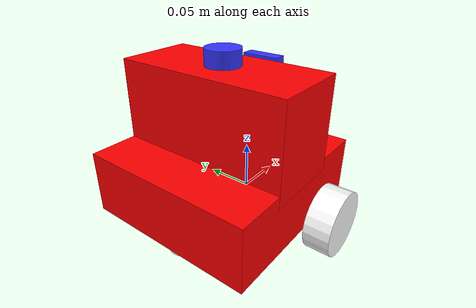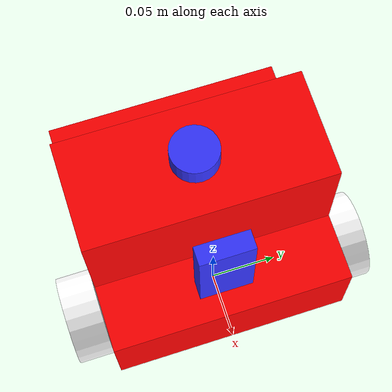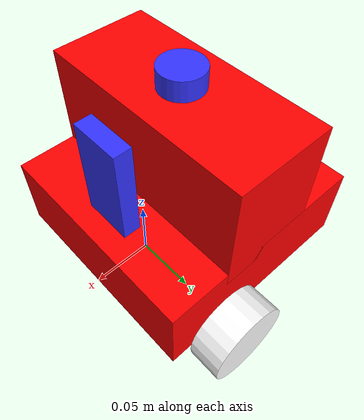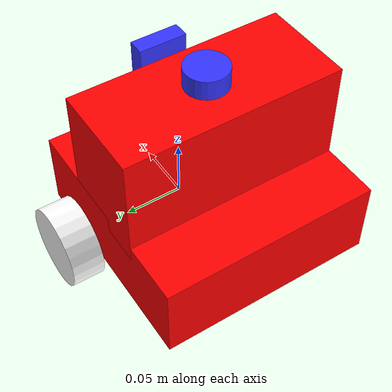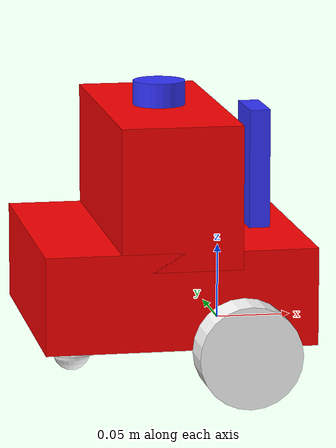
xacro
<?xml version="1.0"?>

<robot xmlns:xacro="http://www.ros.org/wiki/xacro" name="diff_robot">

    <xacro:arg name="use_ros2_control" default="true"/>
    <xacro:arg name="sim_mode" default="false"/>

    <xacro:include filename="core.robot.xacro"/>

    <xacro:if value="$(arg use_ros2_control)">
        <xacro:include filename="ros2_control.xacro"/>
    </xacro:if>
    <xacro:unless value="$(arg use_ros2_control)">
        <xacro:include filename="gazebo_control.xacro"/>
    </xacro:unless>

</robot>

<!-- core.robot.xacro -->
<robot xmlns:xacro="http://www.ros.org/wiki/xacro" name="diff_robot">

    <xacro:include filename="inertial_macros.xacro"/>

    <material name="white">
        <color rgba="1 1 1 1"/>
    </material>

    <material name="orange">
        <color rgba="1 0.3 0.1 1"/>
    </material>

    <material name="blue">
        <color rgba="0.2 0.2 1 1"/>
    </material>

    <material name="black">
        <color rgba="0 0 0 1"/>
    </material>

    <material name="red">
        <color rgba="1 0 0 1"/>
    </material>

    <!-- BASE LINK -->
    <link name="base_link"></link>

    <!-- BASE FOOTPRINT JOINT -->
    <joint name="base_footprint_joint" type="fixed">
        <parent link="base_link"/>
        <child link="base_footprint"/>
        <origin xyz="0 0 0" rpy="0 0 0"/>
    </joint>

     <!-- BASE FOOTPRINT LINK -->
     <link name="base_footprint"></link>

    <!-- CHASSIS JOINT -->
    <joint name="chassis_joint" type="fixed">
        <parent link="base_link"/>
        <child link="chassis_link"/>
        <origin xyz="-0.04 0 0"/> <!-- 18/2 = 9 and -5 = 4cm because of dc motor distance and convert to cm to m = 0.04 -->
    </joint>

    <!-- CHASSIS LINK -->
    <link name="chassis_link">
    <visual>
        <origin xyz="0.0 0.0 0.0325" rpy="0.0 0.0 0.0"/>
        <geometry>
            <box size="0.18 0.18 0.065"/>
        </geometry>
        <material name="red"/>
    </visual>

    <collision>
        <origin xyz="0.0 0.0 0.0325" rpy="0.0 0.0 0.0"/>
        <geometry>
            <box size="0.18 0.18 0.065"/>
        </geometry>
    </collision>
    <xacro:inertial_box mass="0.5" x="0.18" y="0.18" z="0.065">
        <origin xyz="0.0 0.0 0.0325" rpy="0.0 0.0 0.0"/>
    </xacro:inertial_box>
    </link>

    <gazebo reference="chassis_link">
        <material>Gazebo/Red</material>
    </gazebo>

    <!-- LEFT WHEEL JOINT -->
    <joint name="left_wheel_joint" type="continuous">
        <origin xyz="0.0 0.105 0.0" rpy="-${pi/2} 0.0 0.0"/>
        <parent link="base_link"/>
        <child link="left_wheel_link"/>
        <axis xyz="0.0 0.0 1.0"/>
    </joint>

    <!-- LEFT WHEEL LINK -->
    <link name="left_wheel_link">
        <visual>
            <geometry>
                <cylinder radius="0.03405" length="0.027"/>
            </geometry>
            <material name="white"/>
        </visual>

        <collision>
            <geometry>
                <cylinder radius="0.03405" length="0.027"/>
            </geometry>
        </collision>
        <xacro:inertial_cylinder mass="0.05" length="0.027" radius="0.03405">
            <origin xyz="0.0 0.0 0.0" rpy="0.0 0.0 0.0"/>
        </xacro:inertial_cylinder>
    </link>

    <gazebo reference="left_wheel_link">
        <material>Gazebo/White</material>
    </gazebo>

    <!-- RIGHT WHEEL JOINT -->
    <joint name="right_wheel_joint" type="continuous">
        <origin xyz="0.0 -0.105 0.0" rpy="${pi/2} 0.0 0.0"/>
        <parent link="base_link"/>
        <child link="right_wheel_link"/>
        <axis xyz="0.0 0.0 -1.0"/>
    </joint>

    <!-- RIGHT WHEEL LINK -->
    <link name="right_wheel_link">
    <visual>
        <geometry>
            <cylinder radius="0.03405" length="0.027"/>
        </geometry>
        <material name="white"/>
    </visual>

    <collision>
        <geometry>
            <cylinder radius="0.03405" length="0.027"/>
        </geometry>
    </collision>
    <xacro:inertial_cylinder mass="0.05" length="0.027" radius="0.03405">
        <origin xyz="0.0 0.0 0.0" rpy="0.0 0.0 0.0"/>
    </xacro:inertial_cylinder>
    </link>

    <gazebo reference="right_wheel_link">
        <material>Gazebo/White</material>
    </gazebo>

    <!-- CAMERA JOINT -->
    <joint name="camera_joint" type="fixed">
        <origin xyz="0.065 0.0 0.105" rpy="0.0 0.0 0.0"/>
        <parent link="chassis_link"/>
        <child link="camera_link"/>
    </joint>

    <!-- CAMERA LINK -->
    <link name="camera_link">
        <visual>
            <origin xyz="0.0 0.0 0.0" rpy="0.0 0.0 0.0"/>
            <geometry>
                <box size="0.014 0.04 0.08"/>
            </geometry>
            <material name="blue"/>
        </visual>

        <collision>
            <geometry>
                <box size="0.014 0.04 0.08"/>
            </geometry>
        </collision>
        <xacro:inertial_box mass="0.01" x="0.014" y="0.04" z="0.08">
            <origin xyz="0.0 0.0 0.0" rpy="0.0 0.0 0.0"/>
        </xacro:inertial_box>
    </link>

    <gazebo reference="camera_link">
        <material>Gazebo/Blue</material>
    </gazebo>

    <joint name="camera_optical_joint" type="fixed">
        <parent link="camera_link"/>
        <child link="camera_link_optical"/>
        <origin xyz="0 0 0" rpy="${-pi/2} 0 ${-pi/2}"/>
    </joint>

    <link name="camera_link_optical"></link>

    <!-- LIDAR CASE JOINT -->
    <joint name="lidar_joint" type="fixed">
        <parent link="chassis_link"/>
        <child link="ldlidar_base"/>
        <origin xyz="0.0 0.0 0.1" rpy="0.0 0.0 0.0"/>
    </joint>

    <!-- LIDAR CASE LINK -->
    <link name="ldlidar_base">
    <visual>
        <geometry>
            <box size="0.08 0.18 0.095"/>
        </geometry>
        <material name="red"/>
    </visual>

    <collision>
        <geometry>
            <box size="0.08 0.18 0.095"/>
        </geometry>
    </collision>
    <xacro:inertial_box mass="0.03" x="0.08" y="0.18" z="0.095">
        <origin xyz="0.0 0.0 0.0" rpy="0.0 0.0 0.0"/>
    </xacro:inertial_box>
    </link>

    <gazebo reference="ldlidar_base">
        <material>Gazebo/Red</material>
    </gazebo>

    <!-- LIDAR  JOINT -->
    <joint name="lidar_case_joint" type="fixed">
        <origin xyz="0.0 0.0 0.055 " rpy="0.0 0.0 4.71239"/>
        <parent link="ldlidar_base"/>
        <child link="ldlidar_link"/>
    </joint>

    <!-- LIDAR LINK -->
    <link name="ldlidar_link">
    <visual>
        <geometry>
            <cylinder radius="0.0175" length="0.0175"/>
        </geometry>
        <material name="blue"/>
    </visual>

    <collision>
        <geometry>
            <cylinder radius="0.0175" length="0.0175"/>
        </geometry>
    </collision>
    <xacro:inertial_cylinder mass="0.1" length="0.0175" radius="0.0175">
        <origin xyz="0.0 0.0 0.0" rpy="0.0 0.0 0.0"/>
    </xacro:inertial_cylinder>
    </link>

    <gazebo reference="ldlidar_link">
        <material>Gazebo/Blue</material>
    </gazebo>

    <!-- CASTER HOLDER JOINT -->
    <joint name="caster_holder_joint" type="fixed">
        <origin xyz="-0.06 0.0 0.0" rpy="0.0 0.0 0.0"/>
        <parent link="chassis_link"/>
        <child link="caster_holder_link"/>
    </joint>

    <!-- CASTER HOLDER LINK -->
    <link name="caster_holder_link">
        <visual>
            <origin xyz="0.0 0.0 0.0" rpy="0.0 0.0 0.0"/>
            <geometry>
                <cylinder radius="0.0175" length="0.040"/>
            </geometry>
            <material name="white"/>
        </visual>

        <collision>
            <geometry>
                <cylinder radius="0.0175" length="0.040"/>
            </geometry>
        </collision>

        <xacro:inertial_cylinder mass="0.01" length="0.040" radius="0.0175">
        <origin xyz="0.0 0.0 0.0" rpy="0.0 0.0 0.0"/>
        </xacro:inertial_cylinder>
    </link>

    <gazebo reference="caster_holder_link">
        <material>Gazebo/White</material>
    </gazebo>

    <!-- CASTER BALL JOINT -->
    <joint name="caster_ball_joint" type="fixed">
        <origin xyz="0.0 0.0 -0.020" rpy="0.0 0.0 0.0"/>
        <parent link="caster_holder_link"/>
        <child link="caster_link"/>
    </joint>

    <!-- CASTER BALL LINK -->
    <link name="caster_link">
    <visual>
        <origin xyz="0.0 0.0 0.0" rpy="0.0 0.0 0.0"/>
        <geometry>
            <sphere radius="0.0125"/>
        </geometry>
        <material name="white"/>
    </visual>

    <collision>
        <geometry>
            <sphere radius="0.0125"/>
        </geometry>
    </collision>
    <xacro:inertial_sphere mass="0.01" radius="0.0125">
        <origin xyz="0.0 0.0 0.0" rpy="0.0 0.0 0.0"/>
    </xacro:inertial_sphere>
    </link>

    <gazebo reference="caster_link">
        <material>Gazebo/White</material>
        <mu1 value="0.001"/>
        <mu2 value="0.001"/>
    </gazebo>

    <!-- GAZEBO Lidar Plugin -->
    <gazebo reference="ldlidar_link">
        <material>Gazebo/Blue</material>
        <sensor name="laser" type="ray">
            <pose> 0 0 0 0 0 0 </pose>
            <visualize>true</visualize>
            <update_rate>10</update_rate>
            <ray>
                <scan>
                    <horizontal>
                    <samples>360</samples>

                    <min_angle>-3.14</min_angle>
                    <max_angle>3.14</max_angle>

                    <!-- 3.14 is 180 degree -->
                  </horizontal>
                </scan>
                <range>
                    <min>0.3</min>
                    <max>12</max>
                </range>
            </ray>
            <plugin name="laser_controller" filename="libgazebo_ros_ray_sensor.so">
            <ros>
                <remapping>~/out:=scan</remapping>
            </ros>
            <output_type>sensor_msgs/LaserScan</output_type>
            <frame_name>ldlidar_link</frame_name>
            </plugin>
        </sensor>
    </gazebo>

    <!-- CAMERA  Plugin -->
    <gazebo reference="camera_link">
        <material>Gazebo/Black</material>
        <sensor type="camera" name="camera">
        <pose>0 0 0 0 0 0</pose>
        <visualize>true</visualize>
        <update_rate>10.0</update_rate>
        <camera name="head">
            <horizontal_fov>1.089</horizontal_fov>
            <image>
                <width>640</width>
                <height>480</height>
                <format>R8G8B8</format>
            </image>
            <clip>
                <near>0.05</near>
                <far>8.0</far>
            </clip>
        </camera>

        <plugin name="camera_controller" filename="libgazebo_ros_camera.so">
            <frame_name>camera_link_optical</frame_name>
        </plugin>
        </sensor>
    </gazebo>
</robot>

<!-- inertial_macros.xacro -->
<robot xmlns:xacro="http://www.ros.org/wiki/xacro"  name="robot">

    <!-- Specify some standard inertial calculations https://en.wikipedia.org/wiki/List_of_moments_of_inertia -->
    <!-- These make use of xacro's mathematical functionality -->

    <xacro:macro name="inertial_sphere" params="mass radius *origin">
        <inertial>
            <xacro:insert_block name="origin"/>
            <mass value="${mass}" />
            <inertia ixx="${(2/5) * mass * (radius*radius)}" ixy="0.0" ixz="0.0"
                    iyy="${(2/5) * mass * (radius*radius)}" iyz="0.0"
                    izz="${(2/5) * mass * (radius*radius)}" />
        </inertial>
    </xacro:macro>

    <xacro:macro name="inertial_box" params="mass x y z *origin">
        <inertial>
            <xacro:insert_block name="origin"/>
            <mass value="${mass}" />
            <inertia ixx="${(1/12) * mass * (y*y+z*z)}" ixy="0.0" ixz="0.0"
                    iyy="${(1/12) * mass * (x*x+z*z)}" iyz="0.0"
                    izz="${(1/12) * mass * (x*x+y*y)}" />
        </inertial>
    </xacro:macro>

    <xacro:macro name="inertial_cylinder" params="mass length radius *origin">
        <inertial>
            <xacro:insert_block name="origin"/>
            <mass value="${mass}" />
            <inertia ixx="${(1/12) * mass * (3*radius*radius + length*length)}" ixy="0.0" ixz="0.0"
                    iyy="${(1/12) * mass * (3*radius*radius + length*length)}" iyz="0.0"
                    izz="${(1/2) * mass * (radius*radius)}" />
        </inertial>
    </xacro:macro>

</robot>
